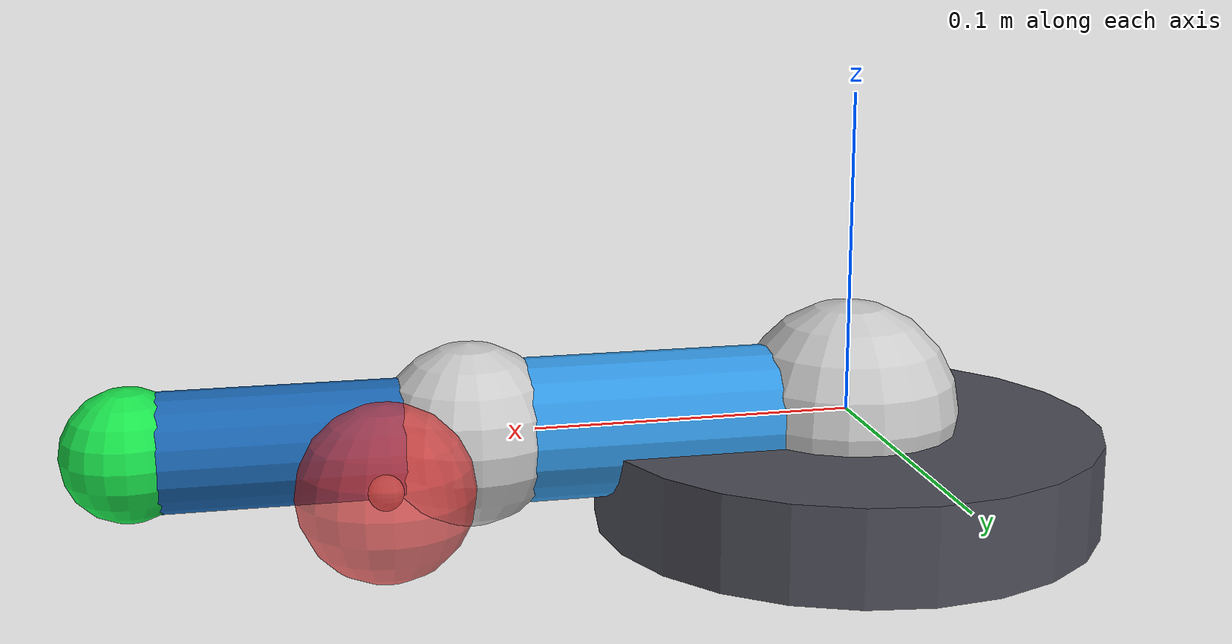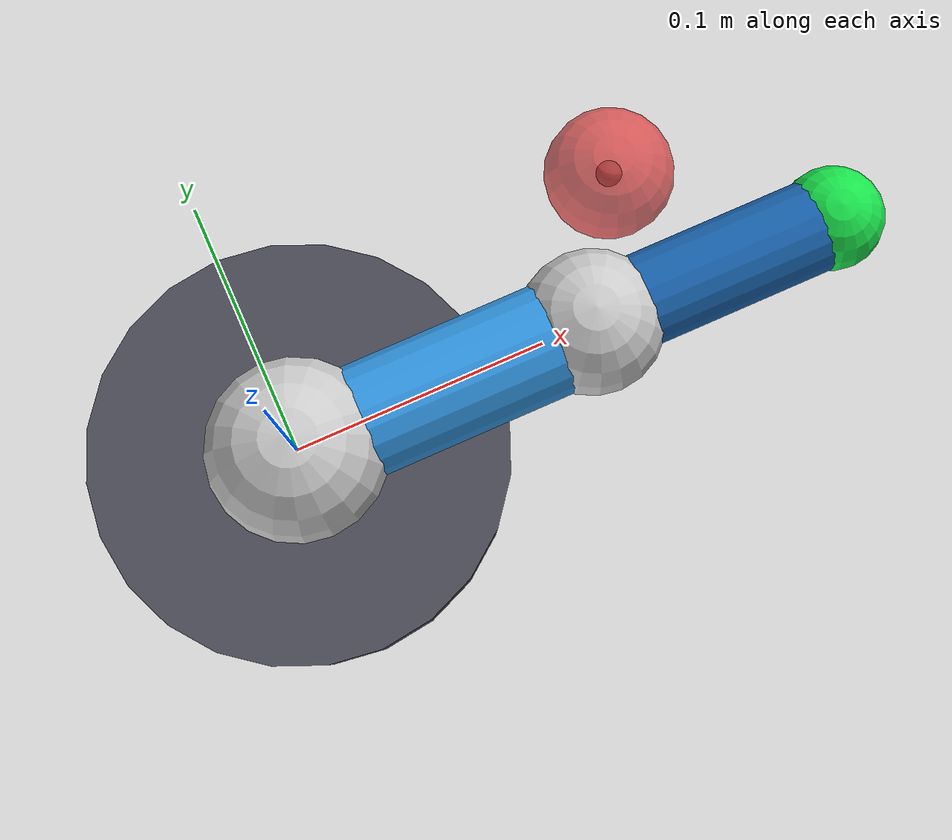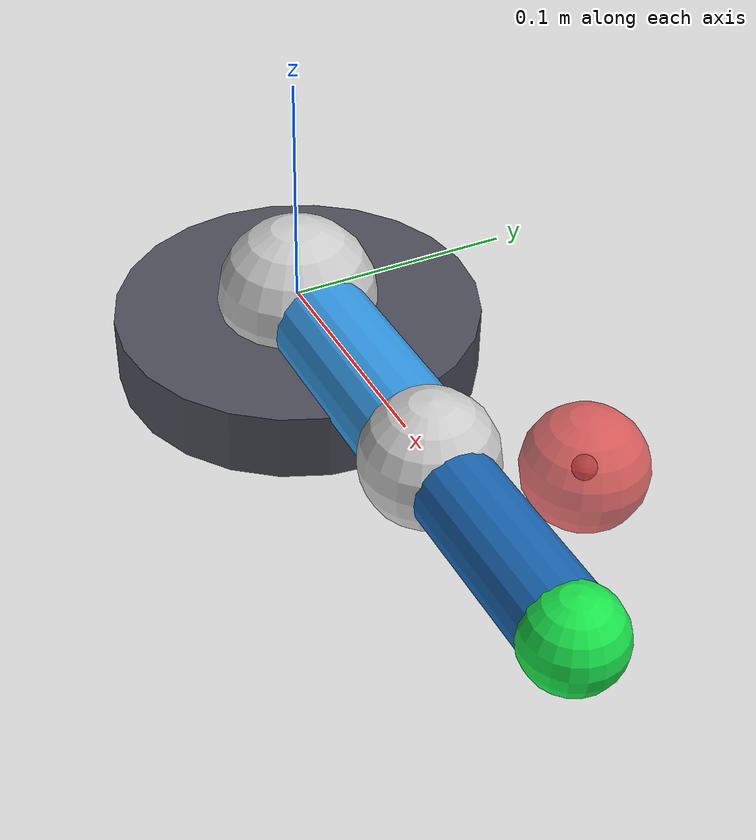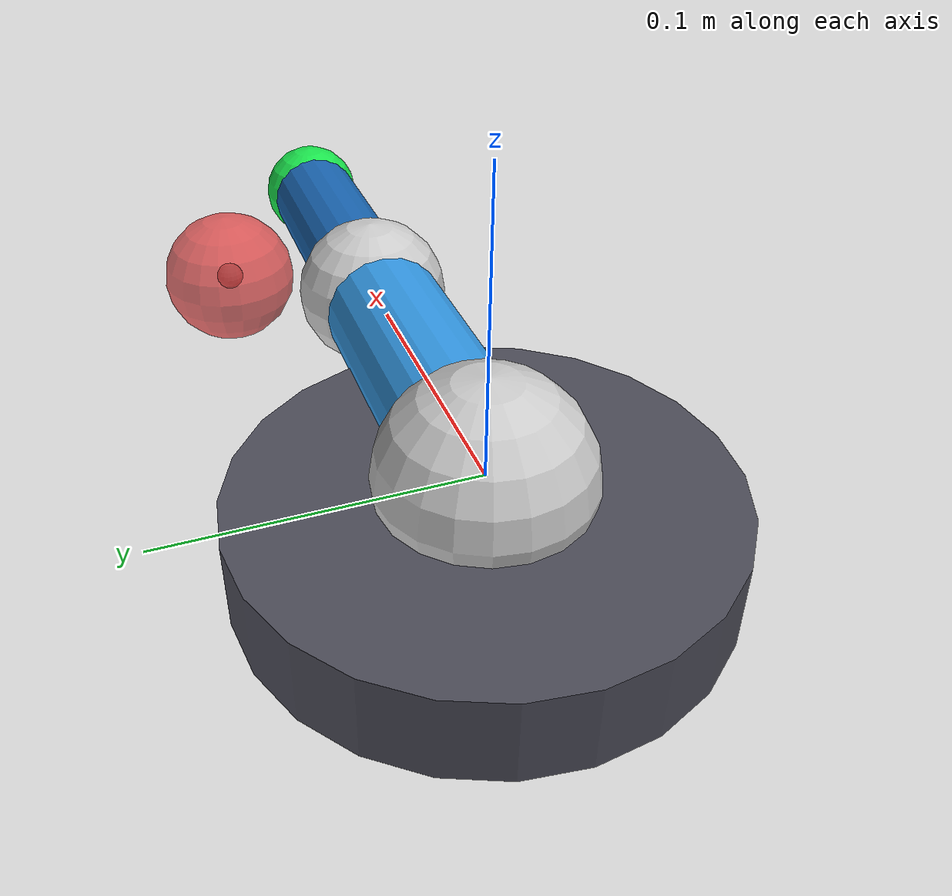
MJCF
<mujoco model="reacher">
  <compiler angle="radian" autolimits="true"/>
  <option timestep="0.02" gravity="0 0 0" integrator="RK4"/>

  <visual>
    <headlight ambient="0.4 0.4 0.4" diffuse="0.8 0.8 0.8"/>
    <rgba haze="0.1 0.1 0.15 1"/>
  </visual>

  <asset>
    <texture type="skybox" builtin="flat" rgb1="0.15 0.15 0.2" rgb2="0.05 0.05 0.1" width="512" height="512"/>
    <material name="arm_upper_mat"  rgba="0.2 0.6 0.9 1"/>
    <material name="arm_lower_mat"  rgba="0.1 0.4 0.7 1"/>
    <material name="joint_mat"      rgba="0.8 0.8 0.8 1"/>
    <material name="target_mat"     rgba="0.9 0.2 0.2 0.7"/>
    <material name="fingertip_mat"  rgba="0.1 0.9 0.3 1"/>
    <material name="base_mat"       rgba="0.3 0.3 0.35 1"/>
  </asset>

  <worldbody>
    <light name="light1" pos="0  2 3" dir="0 -0.5 -1" diffuse="0.7 0.7 0.7"/>
    <light name="light2" pos="0 -2 3" dir="0  0.5 -1" diffuse="0.4 0.4 0.4"/>

    <!-- Fixed base plate -->
    <geom name="base_plate" type="cylinder" pos="0 0 -0.02" size="0.08 0.015" material="base_mat"/>

    <!-- Shoulder joint (z-axis rotation) -->
    <body name="upper_arm" pos="0 0 0">
      <joint name="shoulder" type="hinge" axis="0 0 1" range="-3.1416 3.1416" damping="0.5" stiffness="0"/>
      <geom name="shoulder_geom" type="sphere" size="0.035" material="joint_mat" mass="0.05"/>
      <geom name="upper_arm_geom" type="capsule" fromto="0 0 0  0.12 0 0" size="0.022" material="arm_upper_mat" mass="0.3"/>

      <!-- Elbow joint -->
      <body name="lower_arm" pos="0.12 0 0">
        <joint name="elbow" type="hinge" axis="0 0 1" range="-3.1416 3.1416" damping="0.5" stiffness="0"/>
        <geom name="elbow_geom" type="sphere" size="0.028" material="joint_mat" mass="0.03"/>
        <geom name="lower_arm_geom" type="capsule" fromto="0 0 0  0.10 0 0" size="0.018" material="arm_lower_mat" mass="0.2"/>

        <!-- Fingertip (end-effector) -->
        <body name="fingertip" pos="0.10 0 0">
          <geom name="fingertip_geom" type="sphere" size="0.020" material="fingertip_mat" mass="0.02"/>
          <site name="fingertip_site" pos="0 0 0" size="0.005"/>
        </body>
      </body>
    </body>

    <!-- Target (moved by the environment at reset) -->
    <body name="target" pos="0.15 0.05 0">
      <joint name="target_x" type="slide" axis="1 0 0" range="-0.22 0.22"/>
      <joint name="target_y" type="slide" axis="0 1 0" range="-0.22 0.22"/>
      <geom name="target_geom" type="sphere" size="0.025" material="target_mat" contype="0" conaffinity="0"/>
      <site name="target_site" pos="0 0 0" size="0.005"/>
    </body>
  </worldbody>

  <actuator>
    <motor name="shoulder_motor" joint="shoulder" gear="1.0" ctrllimited="true" ctrlrange="-1 1"/>
    <motor name="elbow_motor"    joint="elbow"    gear="1.0" ctrllimited="true" ctrlrange="-1 1"/>
  </actuator>

  <sensor>
    <jointpos  name="shoulder_pos"  joint="shoulder"/>
    <jointvel  name="shoulder_vel"  joint="shoulder"/>
    <jointpos  name="elbow_pos"     joint="elbow"/>
    <jointvel  name="elbow_vel"     joint="elbow"/>
    <framepos  name="fingertip_pos" objtype="site" objname="fingertip_site"/>
    <framepos  name="target_pos"    objtype="site" objname="target_site"/>
  </sensor>
</mujoco>
